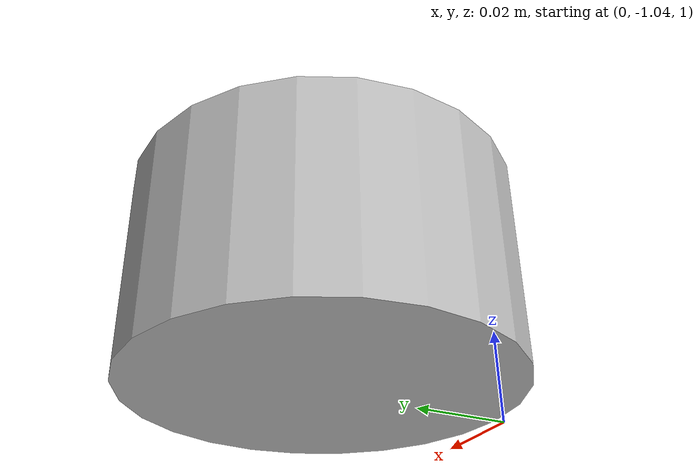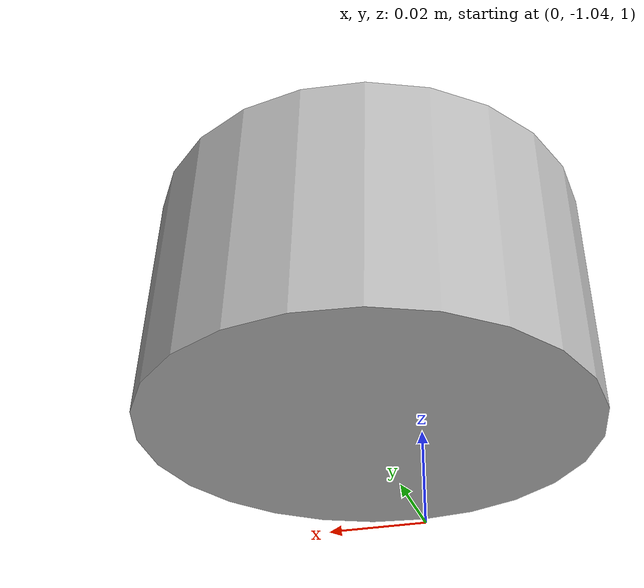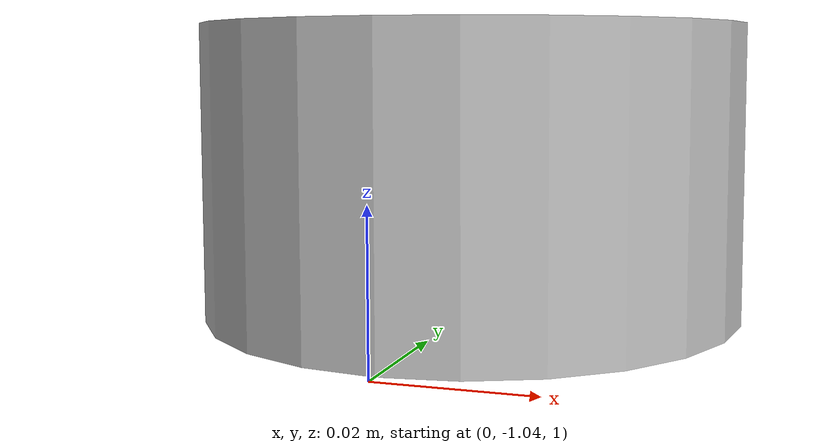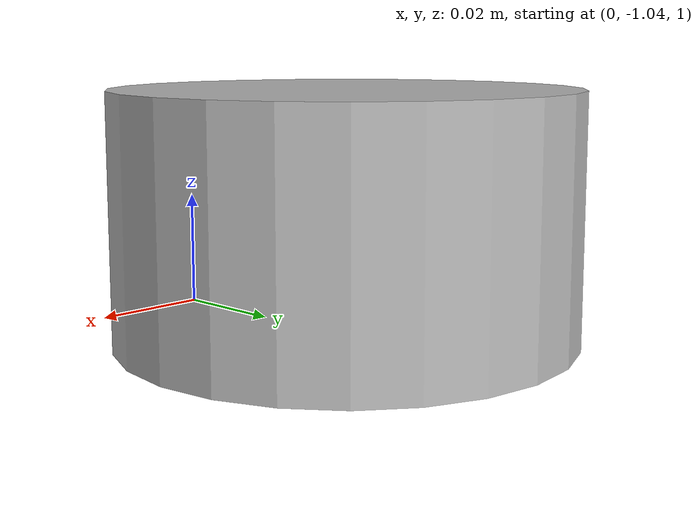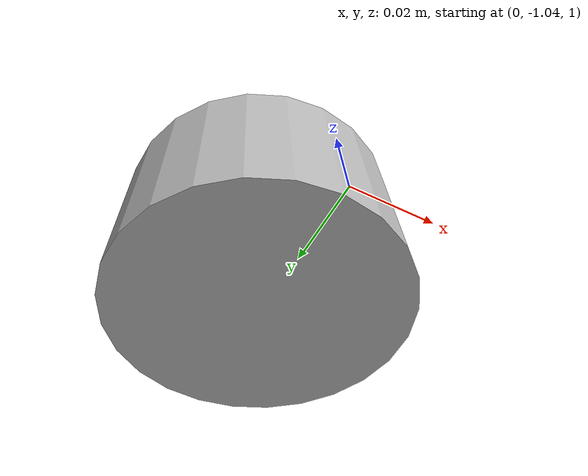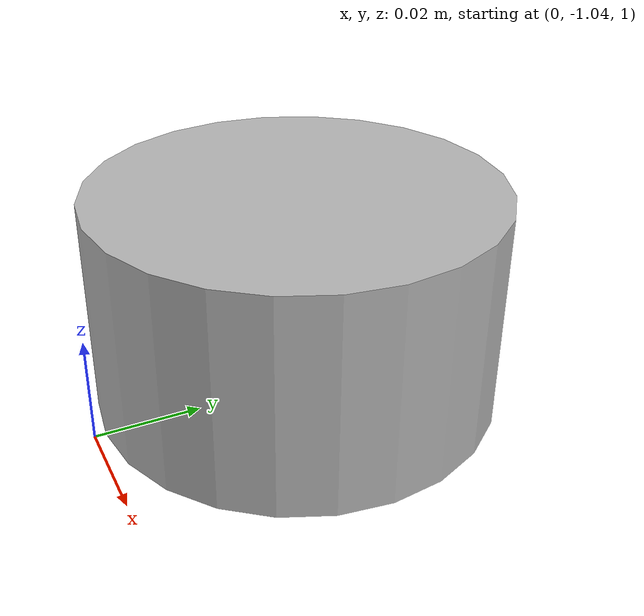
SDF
<sdf version="1.7">
    <model name="rplidarA1">
      <link name="llink">
        <pose>0 -1 1 0 0 0</pose>
        <inertial>
          <pose>0 0 0.0435 0 0 0</pose>
          <mass>0.190</mass>
          <inertia>
            <ixx>0.0001</ixx>
            <ixy>0</ixy>
            <ixz>0</ixz>
            <iyy>0.0001</iyy>
            <iyz>0</iyz>
            <izz>0.0001</izz>
          </inertia>
        </inertial>
        <collision name="collision">
          <pose>0 0 0.0205 0 0 0</pose>
          <geometry>
            <cylinder>
              <radius>0.038</radius>
              <length>0.041</length>
            </cylinder>
          </geometry>
        </collision>
        <visual name="visual">
          <pose>0 0 0.0205 0 0 0</pose>
          <geometry>
            <cylinder>
              <radius>0.038</radius>
              <length>0.041</length>
            </cylinder>
          </geometry>
        </visual>
        <sensor name="rplidar" type="gpu_ray">
          <pose>0 0 0.031 0 0 0</pose>
          <topic>lidarA1</topic>
          <ray>
            <scan>
              <horizontal>
                <samples>16</samples>
                <resolution>1</resolution>
                <min_angle>-3.141592654</min_angle>
                <max_angle>3.141592654</max_angle>
                <min_angle>-0.75</min_angle>
                <max_angle>2.25</max_angle>
              </horizontal>
            </scan>
            <range>
              <min>0.08</min>
              <max>12</max>
              <resolution>0.03</resolution>
            </range>
            <noise>
              <type>gaussian</type>
              <mean>0.0</mean>
              <stddev>0.03</stddev>
            </noise>
          </ray>
          <always_on>0</always_on>
          <update_rate>10</update_rate>
          <visualize>false</visualize>
        </sensor>
      </link>
    </model>
</sdf>
